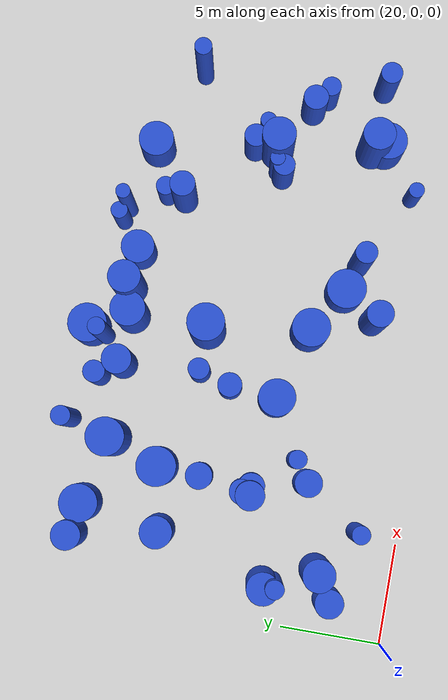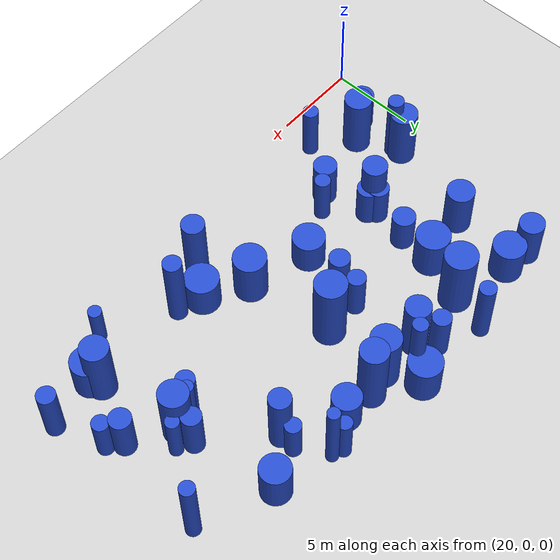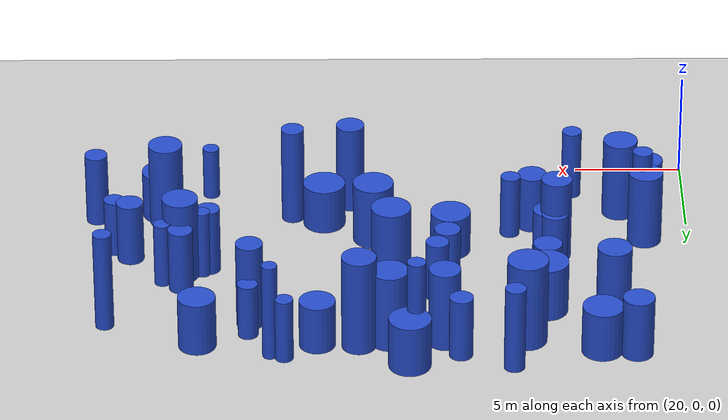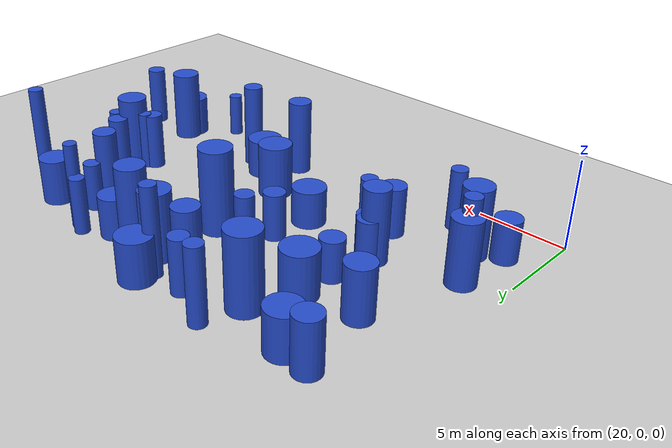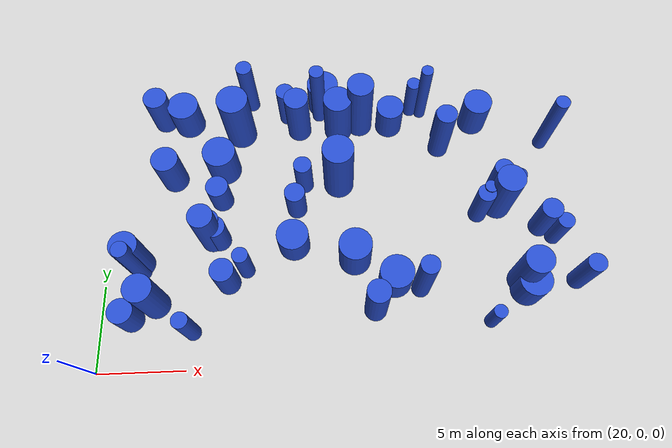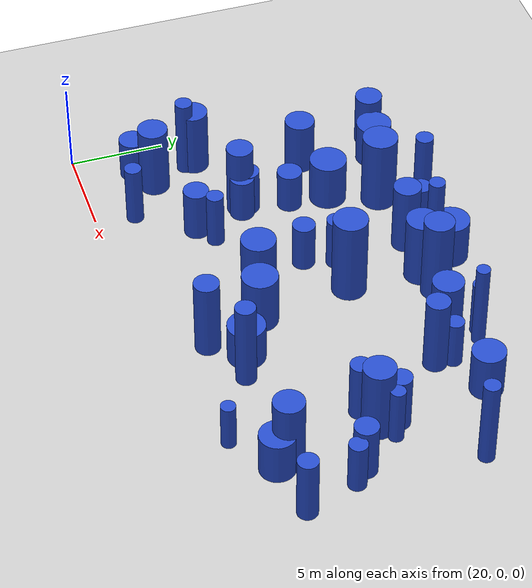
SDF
<sdf version="1.6">
 <world name="default">
  <model name="ground_plane">
   <static>1</static>
   <link name="link">
    <collision name="collision">
     <geometry><plane><normal>0 0 1</normal><size>100 100</size></plane></geometry>
     <surface><friction><ode><mu>100</mu><mu2>50</mu2></ode></friction></surface>
    </collision>
    <visual name="visual">
     <cast_shadows>0</cast_shadows>
     <geometry><plane><normal>0 0 1</normal><size>100 100</size></plane></geometry>
     <material>
      <script><uri>file://media/materials/scripts/gazebo.material</uri><name>Gazebo/Grey</name></script>
     </material>
    </visual>
   </link>
  </model>
  <model name="2">
   <static>0</static>
   <link name="link">
    <inertial>
     <mass>2</mass>
     <inertia><ixx>3.20586</ixx><ixy>0</ixy><ixz>0</ixz><iyy>3.20586</iyy><iyz>0</iyz><izz>0.636563</izz></inertia>
    </inertial>
    <collision name="collision">
     <geometry><cylinder><length>4.16238</length><radius>0.797849</radius></cylinder></geometry>
     <surface><contact><collide_without_contact>1</collide_without_contact></contact></surface>
    </collision>
    <visual name="visual">
     <geometry><cylinder><length>4.16238</length><radius>0.797849</radius></cylinder></geometry>
     <material>
      <script><uri>file://media/materials/scripts/gazebo.material</uri><name>Gazebo/Blue</name></script>
     </material>
    </visual>
    <gravity>0</gravity>
   </link>
   <pose>44.4662 4.48744 2.08119 0 -0 0</pose>
  </model>
  <model name="6">
   <static>0</static>
   <link name="link">
    <inertial>
     <mass>2</mass>
     <inertia><ixx>4.21567</ixx><ixy>0</ixy><ixz>0</ixz><iyy>4.21567</iyy><iyz>0</iyz><izz>0.18322</izz></inertia>
    </inertial>
    <collision name="collision">
     <geometry><cylinder><length>4.97437</length><radius>0.428042</radius></cylinder></geometry>
     <surface><contact><collide_without_contact>1</collide_without_contact></contact></surface>
    </collision>
    <visual name="visual">
     <geometry><cylinder><length>4.97437</length><radius>0.428042</radius></cylinder></geometry>
     <material>
      <script><uri>file://media/materials/scripts/gazebo.material</uri><name>Gazebo/Blue</name></script>
     </material>
    </visual>
    <gravity>0</gravity>
   </link>
   <pose>32.8393 16.173 2.48719 0 -0 0</pose>
  </model>
  <model name="8">
   <static>0</static>
   <link name="link">
    <inertial>
     <mass>2</mass>
     <inertia><ixx>3.88325</ixx><ixy>0</ixy><ixz>0</ixz><iyy>3.88325</iyy><iyz>0</iyz><izz>0.126882</izz></inertia>
    </inertial>
    <collision name="collision">
     <geometry><cylinder><length>4.78737</length><radius>0.356206</radius></cylinder></geometry>
     <surface><contact><collide_without_contact>1</collide_without_contact></contact></surface>
    </collision>
    <visual name="visual">
     <geometry><cylinder><length>4.78737</length><radius>0.356206</radius></cylinder></geometry>
     <material>
      <script><uri>file://media/materials/scripts/gazebo.material</uri><name>Gazebo/Blue</name></script>
     </material>
    </visual>
    <gravity>0</gravity>
   </link>
   <pose>39.4281 16.1246 2.39368 0 -0 0</pose>
  </model>
  <model name="10">
   <static>0</static>
   <link name="link">
    <inertial>
     <mass>2</mass>
     <inertia><ixx>3.24813</ixx><ixy>0</ixy><ixz>0</ixz><iyy>3.24813</iyy><iyz>0</iyz><izz>0.387761</izz></inertia>
    </inertial>
    <collision name="collision">
     <geometry><cylinder><length>4.28083</length><radius>0.622705</radius></cylinder></geometry>
     <surface><contact><collide_without_contact>1</collide_without_contact></contact></surface>
    </collision>
    <visual name="visual">
     <geometry><cylinder><length>4.28083</length><radius>0.622705</radius></cylinder></geometry>
     <material>
      <script><uri>file://media/materials/scripts/gazebo.material</uri><name>Gazebo/Blue</name></script>
     </material>
    </visual>
    <gravity>0</gravity>
   </link>
   <pose>40.3812 13.4456 2.14041 0 -0 0</pose>
  </model>
  <model name="16">
   <static>0</static>
   <link name="link">
    <inertial>
     <mass>2</mass>
     <inertia><ixx>1.16291</ixx><ixy>0</ixy><ixz>0</ixz><iyy>1.16291</iyy><iyz>0</iyz><izz>0.875446</izz></inertia>
    </inertial>
    <collision name="collision">
     <geometry><cylinder><length>2.08593</length><radius>0.935653</radius></cylinder></geometry>
     <surface><contact><collide_without_contact>1</collide_without_contact></contact></surface>
    </collision>
    <visual name="visual">
     <geometry><cylinder><length>2.08593</length><radius>0.935653</radius></cylinder></geometry>
     <material>
      <script><uri>file://media/materials/scripts/gazebo.material</uri><name>Gazebo/Blue</name></script>
     </material>
    </visual>
    <gravity>0</gravity>
   </link>
   <pose>31.1404 7.15658 1.04296 0 -0 0</pose>
  </model>
  <model name="23">
   <static>0</static>
   <link name="link">
    <inertial>
     <mass>2</mass>
     <inertia><ixx>2.07027</ixx><ixy>0</ixy><ixz>0</ixz><iyy>2.07027</iyy><iyz>0</iyz><izz>0.208934</izz></inertia>
    </inertial>
    <collision name="collision">
     <geometry><cylinder><length>3.43436</length><radius>0.457093</radius></cylinder></geometry>
     <surface><contact><collide_without_contact>1</collide_without_contact></contact></surface>
    </collision>
    <visual name="visual">
     <geometry><cylinder><length>3.43436</length><radius>0.457093</radius></cylinder></geometry>
     <material>
      <script><uri>file://media/materials/scripts/gazebo.material</uri><name>Gazebo/Blue</name></script>
     </material>
    </visual>
    <gravity>0</gravity>
   </link>
   <pose>25.3111 2.1227 1.71718 0 -0 0</pose>
  </model>
  <model name="26">
   <static>0</static>
   <link name="link">
    <inertial>
     <mass>2</mass>
     <inertia><ixx>1.56501</ixx><ixy>0</ixy><ixz>0</ixz><iyy>1.56501</iyy><iyz>0</iyz><izz>0.284058</izz></inertia>
    </inertial>
    <collision name="collision">
     <geometry><cylinder><length>2.92197</length><radius>0.532971</radius></cylinder></geometry>
     <surface><contact><collide_without_contact>1</collide_without_contact></contact></surface>
    </collision>
    <visual name="visual">
     <geometry><cylinder><length>2.92197</length><radius>0.532971</radius></cylinder></geometry>
     <material>
      <script><uri>file://media/materials/scripts/gazebo.material</uri><name>Gazebo/Blue</name></script>
     </material>
    </visual>
    <gravity>0</gravity>
   </link>
   <pose>31.8249 11.1624 1.46098 0 -0 0</pose>
  </model>
  <model name="28">
   <static>0</static>
   <link name="link">
    <inertial>
     <mass>2</mass>
     <inertia><ixx>2.79456</ixx><ixy>0</ixy><ixz>0</ixz><iyy>2.79456</iyy><iyz>0</iyz><izz>0.744168</izz></inertia>
    </inertial>
    <collision name="collision">
     <geometry><cylinder><length>3.81246</length><radius>0.862652</radius></cylinder></geometry>
     <surface><contact><collide_without_contact>1</collide_without_contact></contact></surface>
    </collision>
    <visual name="visual">
     <geometry><cylinder><length>3.81246</length><radius>0.862652</radius></cylinder></geometry>
     <material>
      <script><uri>file://media/materials/scripts/gazebo.material</uri><name>Gazebo/Blue</name></script>
     </material>
    </visual>
    <gravity>0</gravity>
   </link>
   <pose>34.0348 15.0048 1.90623 0 -0 0</pose>
  </model>
  <model name="30">
   <static>0</static>
   <link name="link">
    <inertial>
     <mass>2</mass>
     <inertia><ixx>2.2394</ixx><ixy>0</ixy><ixz>0</ixz><iyy>2.2394</iyy><iyz>0</iyz><izz>0.282543</izz></inertia>
    </inertial>
    <collision name="collision">
     <geometry><cylinder><length>3.54806</length><radius>0.531548</radius></cylinder></geometry>
     <surface><contact><collide_without_contact>1</collide_without_contact></contact></surface>
    </collision>
    <visual name="visual">
     <geometry><cylinder><length>3.54806</length><radius>0.531548</radius></cylinder></geometry>
     <material>
      <script><uri>file://media/materials/scripts/gazebo.material</uri><name>Gazebo/Blue</name></script>
     </material>
    </visual>
    <gravity>0</gravity>
   </link>
   <pose>47.7304 4.35367 1.77403 0 -0 0</pose>
  </model>
  <model name="36">
   <static>0</static>
   <link name="link">
    <inertial>
     <mass>2</mass>
     <inertia><ixx>4.09144</ixx><ixy>0</ixy><ixz>0</ixz><iyy>4.09144</iyy><iyz>0</iyz><izz>0.182254</izz></inertia>
    </inertial>
    <collision name="collision">
     <geometry><cylinder><length>4.89917</length><radius>0.426913</radius></cylinder></geometry>
     <surface><contact><collide_without_contact>1</collide_without_contact></contact></surface>
    </collision>
    <visual name="visual">
     <geometry><cylinder><length>4.89917</length><radius>0.426913</radius></cylinder></geometry>
     <material>
      <script><uri>file://media/materials/scripts/gazebo.material</uri><name>Gazebo/Blue</name></script>
     </material>
    </visual>
    <gravity>0</gravity>
   </link>
   <pose>47.0082 13.591 2.44958 0 -0 0</pose>
  </model>
  <model name="37">
   <static>0</static>
   <link name="link">
    <inertial>
     <mass>2</mass>
     <inertia><ixx>1.49639</ixx><ixy>0</ixy><ixz>0</ixz><iyy>1.49639</iyy><iyz>0</iyz><izz>0.93857</izz></inertia>
    </inertial>
    <collision name="collision">
     <geometry><cylinder><length>2.48246</length><radius>0.968798</radius></cylinder></geometry>
     <surface><contact><collide_without_contact>1</collide_without_contact></contact></surface>
    </collision>
    <visual name="visual">
     <geometry><cylinder><length>2.48246</length><radius>0.968798</radius></cylinder></geometry>
     <material>
      <script><uri>file://media/materials/scripts/gazebo.material</uri><name>Gazebo/Blue</name></script>
     </material>
    </visual>
    <gravity>0</gravity>
   </link>
   <pose>33.1347 16.9677 1.24123 0 -0 0</pose>
  </model>
  <model name="47">
   <static>0</static>
   <link name="link">
    <inertial>
     <mass>2</mass>
     <inertia><ixx>3.1155</ixx><ixy>0</ixy><ixz>0</ixz><iyy>3.1155</iyy><iyz>0</iyz><izz>0.511303</izz></inertia>
    </inertial>
    <collision name="collision">
     <geometry><cylinder><length>4.14235</length><radius>0.715055</radius></cylinder></geometry>
     <surface><contact><collide_without_contact>1</collide_without_contact></contact></surface>
    </collision>
    <visual name="visual">
     <geometry><cylinder><length>4.14235</length><radius>0.715055</radius></cylinder></geometry>
     <material>
      <script><uri>file://media/materials/scripts/gazebo.material</uri><name>Gazebo/Blue</name></script>
     </material>
    </visual>
    <gravity>0</gravity>
   </link>
   <pose>26.2492 7.67174 2.07118 0 -0 0</pose>
  </model>
  <model name="66">
   <static>0</static>
   <link name="link">
    <inertial>
     <mass>2</mass>
     <inertia><ixx>1.32349</ixx><ixy>0</ixy><ixz>0</ixz><iyy>1.32349</iyy><iyz>0</iyz><izz>0.364815</izz></inertia>
    </inertial>
    <collision name="collision">
     <geometry><cylinder><length>2.61658</length><radius>0.603999</radius></cylinder></geometry>
     <surface><contact><collide_without_contact>1</collide_without_contact></contact></surface>
    </collision>
    <visual name="visual">
     <geometry><cylinder><length>2.61658</length><radius>0.603999</radius></cylinder></geometry>
     <material>
      <script><uri>file://media/materials/scripts/gazebo.material</uri><name>Gazebo/Blue</name></script>
     </material>
    </visual>
    <gravity>0</gravity>
   </link>
   <pose>31.3296 9.54668 1.30829 0 -0 0</pose>
  </model>
  <model name="68">
   <static>0</static>
   <link name="link">
    <inertial>
     <mass>2</mass>
     <inertia><ixx>4.05064</ixx><ixy>0</ixy><ixz>0</ixz><iyy>4.05064</iyy><iyz>0</iyz><izz>0.285058</izz></inertia>
    </inertial>
    <collision name="collision">
     <geometry><cylinder><length>4.84238</length><radius>0.533908</radius></cylinder></geometry>
     <surface><contact><collide_without_contact>1</collide_without_contact></contact></surface>
    </collision>
    <visual name="visual">
     <geometry><cylinder><length>4.84238</length><radius>0.533908</radius></cylinder></geometry>
     <material>
      <script><uri>file://media/materials/scripts/gazebo.material</uri><name>Gazebo/Blue</name></script>
     </material>
    </visual>
    <gravity>0</gravity>
   </link>
   <pose>38.5073 4.20949 2.42119 0 -0 0</pose>
  </model>
  <model name="72">
   <static>0</static>
   <link name="link">
    <inertial>
     <mass>2</mass>
     <inertia><ixx>1.26226</ixx><ixy>0</ixy><ixz>0</ixz><iyy>1.26226</iyy><iyz>0</iyz><izz>0.691062</izz></inertia>
    </inertial>
    <collision name="collision">
     <geometry><cylinder><length>2.34529</length><radius>0.831302</radius></cylinder></geometry>
     <surface><contact><collide_without_contact>1</collide_without_contact></contact></surface>
    </collision>
    <visual name="visual">
     <geometry><cylinder><length>2.34529</length><radius>0.831302</radius></cylinder></geometry>
     <material>
      <script><uri>file://media/materials/scripts/gazebo.material</uri><name>Gazebo/Blue</name></script>
     </material>
    </visual>
    <gravity>0</gravity>
   </link>
   <pose>37.3059 15.2245 1.17264 0 -0 0</pose>
  </model>
  <model name="75">
   <static>0</static>
   <link name="link">
    <inertial>
     <mass>2</mass>
     <inertia><ixx>3.39002</ixx><ixy>0</ixy><ixz>0</ixz><iyy>3.39002</iyy><iyz>0</iyz><izz>0.436853</izz></inertia>
    </inertial>
    <collision name="collision">
     <geometry><cylinder><length>4.36229</length><radius>0.660948</radius></cylinder></geometry>
     <surface><contact><collide_without_contact>1</collide_without_contact></contact></surface>
    </collision>
    <visual name="visual">
     <geometry><cylinder><length>4.36229</length><radius>0.660948</radius></cylinder></geometry>
     <material>
      <script><uri>file://media/materials/scripts/gazebo.material</uri><name>Gazebo/Blue</name></script>
     </material>
    </visual>
    <gravity>0</gravity>
   </link>
   <pose>35.805 3.03949 2.18115 0 -0 0</pose>
  </model>
  <model name="77">
   <static>0</static>
   <link name="link">
    <inertial>
     <mass>2</mass>
     <inertia><ixx>3.04826</ixx><ixy>0</ixy><ixz>0</ixz><iyy>3.04826</iyy><iyz>0</iyz><izz>0.228469</izz></inertia>
    </inertial>
    <collision name="collision">
     <geometry><cylinder><length>4.19573</length><radius>0.477984</radius></cylinder></geometry>
     <surface><contact><collide_without_contact>1</collide_without_contact></contact></surface>
    </collision>
    <visual name="visual">
     <geometry><cylinder><length>4.19573</length><radius>0.477984</radius></cylinder></geometry>
     <material>
      <script><uri>file://media/materials/scripts/gazebo.material</uri><name>Gazebo/Blue</name></script>
     </material>
    </visual>
    <gravity>0</gravity>
   </link>
   <pose>28.4299 17.1628 2.09787 0 -0 0</pose>
  </model>
  <model name="78">
   <static>0</static>
   <link name="link">
    <inertial>
     <mass>2</mass>
     <inertia><ixx>4.04847</ixx><ixy>0</ixy><ixz>0</ixz><iyy>4.04847</iyy><iyz>0</iyz><izz>0.629911</izz></inertia>
    </inertial>
    <collision name="collision">
     <geometry><cylinder><length>4.73298</length><radius>0.793669</radius></cylinder></geometry>
     <surface><contact><collide_without_contact>1</collide_without_contact></contact></surface>
    </collision>
    <visual name="visual">
     <geometry><cylinder><length>4.73298</length><radius>0.793669</radius></cylinder></geometry>
     <material>
      <script><uri>file://media/materials/scripts/gazebo.material</uri><name>Gazebo/Blue</name></script>
     </material>
    </visual>
    <gravity>0</gravity>
   </link>
   <pose>35.4182 15.3407 2.36649 0 -0 0</pose>
  </model>
  <model name="90">
   <static>0</static>
   <link name="link">
    <inertial>
     <mass>2</mass>
     <inertia><ixx>2.81916</ixx><ixy>0</ixy><ixz>0</ixz><iyy>2.81916</iyy><iyz>0</iyz><izz>0.532219</izz></inertia>
    </inertial>
    <collision name="collision">
     <geometry><cylinder><length>3.91386</length><radius>0.729533</radius></cylinder></geometry>
     <surface><contact><collide_without_contact>1</collide_without_contact></contact></surface>
    </collision>
    <visual name="visual">
     <geometry><cylinder><length>3.91386</length><radius>0.729533</radius></cylinder></geometry>
     <material>
      <script><uri>file://media/materials/scripts/gazebo.material</uri><name>Gazebo/Blue</name></script>
     </material>
    </visual>
    <gravity>0</gravity>
   </link>
   <pose>31.5458 15.0812 1.95693 0 -0 0</pose>
  </model>
  <model name="93">
   <static>0</static>
   <link name="link">
    <inertial>
     <mass>2</mass>
     <inertia><ixx>2.55649</ixx><ixy>0</ixy><ixz>0</ixz><iyy>2.55649</iyy><iyz>0</iyz><izz>0.635989</izz></inertia>
    </inertial>
    <collision name="collision">
     <geometry><cylinder><length>3.66483</length><radius>0.797489</radius></cylinder></geometry>
     <surface><contact><collide_without_contact>1</collide_without_contact></contact></surface>
    </collision>
    <visual name="visual">
     <geometry><cylinder><length>3.66483</length><radius>0.797489</radius></cylinder></geometry>
     <material>
      <script><uri>file://media/materials/scripts/gazebo.material</uri><name>Gazebo/Blue</name></script>
     </material>
    </visual>
    <gravity>0</gravity>
   </link>
   <pose>22.0357 6.31783 1.83241 0 -0 0</pose>
  </model>
  <model name="96">
   <static>0</static>
   <link name="link">
    <inertial>
     <mass>2</mass>
     <inertia><ixx>1.17348</ixx><ixy>0</ixy><ixz>0</ixz><iyy>1.17348</iyy><iyz>0</iyz><izz>0.148193</izz></inertia>
    </inertial>
    <collision name="collision">
     <geometry><cylinder><length>2.56832</length><radius>0.384959</radius></cylinder></geometry>
     <surface><contact><collide_without_contact>1</collide_without_contact></contact></surface>
    </collision>
    <visual name="visual">
     <geometry><cylinder><length>2.56832</length><radius>0.384959</radius></cylinder></geometry>
     <material>
      <script><uri>file://media/materials/scripts/gazebo.material</uri><name>Gazebo/Blue</name></script>
     </material>
    </visual>
    <gravity>0</gravity>
   </link>
   <pose>42.4134 2.12337 1.28416 0 -0 0</pose>
  </model>
  <model name="104">
   <static>0</static>
   <link name="link">
    <inertial>
     <mass>2</mass>
     <inertia><ixx>1.39177</ixx><ixy>0</ixy><ixz>0</ixz><iyy>1.39177</iyy><iyz>0</iyz><izz>0.899716</izz></inertia>
    </inertial>
    <collision name="collision">
     <geometry><cylinder><length>2.37729</length><radius>0.948534</radius></cylinder></geometry>
     <surface><contact><collide_without_contact>1</collide_without_contact></contact></surface>
    </collision>
    <visual name="visual">
     <geometry><cylinder><length>2.37729</length><radius>0.948534</radius></cylinder></geometry>
     <material>
      <script><uri>file://media/materials/scripts/gazebo.material</uri><name>Gazebo/Blue</name></script>
     </material>
    </visual>
    <gravity>0</gravity>
   </link>
   <pose>24.4132 15.8053 1.18864 0 -0 0</pose>
  </model>
  <model name="107">
   <static>0</static>
   <link name="link">
    <inertial>
     <mass>2</mass>
     <inertia><ixx>1.72381</ixx><ixy>0</ixy><ixz>0</ixz><iyy>1.72381</iyy><iyz>0</iyz><izz>0.38773</izz></inertia>
    </inertial>
    <collision name="collision">
     <geometry><cylinder><length>3.0298</length><radius>0.62268</radius></cylinder></geometry>
     <surface><contact><collide_without_contact>1</collide_without_contact></contact></surface>
    </collision>
    <visual name="visual">
     <geometry><cylinder><length>3.0298</length><radius>0.62268</radius></cylinder></geometry>
     <material>
      <script><uri>file://media/materials/scripts/gazebo.material</uri><name>Gazebo/Blue</name></script>
     </material>
    </visual>
    <gravity>0</gravity>
   </link>
   <pose>46.0377 7.80321 1.5149 0 -0 0</pose>
  </model>
  <model name="109">
   <static>0</static>
   <link name="link">
    <inertial>
     <mass>2</mass>
     <inertia><ixx>1.81505</ixx><ixy>0</ixy><ixz>0</ixz><iyy>1.81505</iyy><iyz>0</iyz><izz>0.637128</izz></inertia>
    </inertial>
    <collision name="collision">
     <geometry><cylinder><length>2.99649</length><radius>0.798203</radius></cylinder></geometry>
     <surface><contact><collide_without_contact>1</collide_without_contact></contact></surface>
    </collision>
    <visual name="visual">
     <geometry><cylinder><length>2.99649</length><radius>0.798203</radius></cylinder></geometry>
     <material>
      <script><uri>file://media/materials/scripts/gazebo.material</uri><name>Gazebo/Blue</name></script>
     </material>
    </visual>
    <gravity>0</gravity>
   </link>
   <pose>23.7206 11.8082 1.49824 0 -0 0</pose>
  </model>
  <model name="111">
   <static>0</static>
   <link name="link">
    <inertial>
     <mass>2</mass>
     <inertia><ixx>1.74581</ixx><ixy>0</ixy><ixz>0</ixz><iyy>1.74581</iyy><iyz>0</iyz><izz>0.527772</izz></inertia>
    </inertial>
    <collision name="collision">
     <geometry><cylinder><length>2.98187</length><radius>0.726479</radius></cylinder></geometry>
     <surface><contact><collide_without_contact>1</collide_without_contact></contact></surface>
    </collision>
    <visual name="visual">
     <geometry><cylinder><length>2.98187</length><radius>0.726479</radius></cylinder></geometry>
     <material>
      <script><uri>file://media/materials/scripts/gazebo.material</uri><name>Gazebo/Blue</name></script>
     </material>
    </visual>
    <gravity>0</gravity>
   </link>
   <pose>22.8404 16.0415 1.49093 0 -0 0</pose>
  </model>
  <model name="113">
   <static>0</static>
   <link name="link">
    <inertial>
     <mass>2</mass>
     <inertia><ixx>1.79663</ixx><ixy>0</ixy><ixz>0</ixz><iyy>1.79663</iyy><iyz>0</iyz><izz>0.325162</izz></inertia>
    </inertial>
    <collision name="collision">
     <geometry><cylinder><length>3.13118</length><radius>0.57023</radius></cylinder></geometry>
     <surface><contact><collide_without_contact>1</collide_without_contact></contact></surface>
    </collision>
    <visual name="visual">
     <geometry><cylinder><length>3.13118</length><radius>0.57023</radius></cylinder></geometry>
     <material>
      <script><uri>file://media/materials/scripts/gazebo.material</uri><name>Gazebo/Blue</name></script>
     </material>
    </visual>
    <gravity>0</gravity>
   </link>
   <pose>43.6165 10.3969 1.56559 0 -0 0</pose>
  </model>
  <model name="116">
   <static>0</static>
   <link name="link">
    <inertial>
     <mass>2</mass>
     <inertia><ixx>1.63259</ixx><ixy>0</ixy><ixz>0</ixz><iyy>1.63259</iyy><iyz>0</iyz><izz>0.973707</izz></inertia>
    </inertial>
    <collision name="collision">
     <geometry><cylinder><length>2.62191</length><radius>0.986766</radius></cylinder></geometry>
     <surface><contact><collide_without_contact>1</collide_without_contact></contact></surface>
    </collision>
    <visual name="visual">
     <geometry><cylinder><length>2.62191</length><radius>0.986766</radius></cylinder></geometry>
     <material>
      <script><uri>file://media/materials/scripts/gazebo.material</uri><name>Gazebo/Blue</name></script>
     </material>
    </visual>
    <gravity>0</gravity>
   </link>
   <pose>26.8154 12.3832 1.31095 0 -0 0</pose>
  </model>
  <model name="120">
   <static>0</static>
   <link name="link">
    <inertial>
     <mass>2</mass>
     <inertia><ixx>1.23799</ixx><ixy>0</ixy><ixz>0</ixz><iyy>1.23799</iyy><iyz>0</iyz><izz>0.430058</izz></inertia>
    </inertial>
    <collision name="collision">
     <geometry><cylinder><length>2.47745</length><radius>0.655788</radius></cylinder></geometry>
     <surface><contact><collide_without_contact>1</collide_without_contact></contact></surface>
    </collision>
    <visual name="visual">
     <geometry><cylinder><length>2.47745</length><radius>0.655788</radius></cylinder></geometry>
     <material>
      <script><uri>file://media/materials/scripts/gazebo.material</uri><name>Gazebo/Blue</name></script>
     </material>
    </visual>
    <gravity>0</gravity>
   </link>
   <pose>26.6657 7.65278 1.23873 0 -0 0</pose>
  </model>
  <model name="123">
   <static>0</static>
   <link name="link">
    <inertial>
     <mass>2</mass>
     <inertia><ixx>1.70137</ixx><ixy>0</ixy><ixz>0</ixz><iyy>1.70137</iyy><iyz>0</iyz><izz>0.21026</izz></inertia>
    </inertial>
    <collision name="collision">
     <geometry><cylinder><length>3.09474</length><radius>0.458541</radius></cylinder></geometry>
     <surface><contact><collide_without_contact>1</collide_without_contact></contact></surface>
    </collision>
    <visual name="visual">
     <geometry><cylinder><length>3.09474</length><radius>0.458541</radius></cylinder></geometry>
     <material>
      <script><uri>file://media/materials/scripts/gazebo.material</uri><name>Gazebo/Blue</name></script>
     </material>
    </visual>
    <gravity>0</gravity>
   </link>
   <pose>28.322 5.685 1.54737 0 -0 0</pose>
  </model>
  <model name="124">
   <static>0</static>
   <link name="link">
    <inertial>
     <mass>2</mass>
     <inertia><ixx>1.4041</ixx><ixy>0</ixy><ixz>0</ixz><iyy>1.4041</iyy><iyz>0</iyz><izz>0.229798</izz></inertia>
    </inertial>
    <collision name="collision">
     <geometry><cylinder><length>2.78123</length><radius>0.479372</radius></cylinder></geometry>
     <surface><contact><collide_without_contact>1</collide_without_contact></contact></surface>
    </collision>
    <visual name="visual">
     <geometry><cylinder><length>2.78123</length><radius>0.479372</radius></cylinder></geometry>
     <material>
      <script><uri>file://media/materials/scripts/gazebo.material</uri><name>Gazebo/Blue</name></script>
     </material>
    </visual>
    <gravity>0</gravity>
   </link>
   <pose>46.7902 7.13736 1.39061 0 -0 0</pose>
  </model>
  <model name="142">
   <static>0</static>
   <link name="link">
    <inertial>
     <mass>2</mass>
     <inertia><ixx>1.48896</ixx><ixy>0</ixy><ixz>0</ixz><iyy>1.48896</iyy><iyz>0</iyz><izz>0.754625</izz></inertia>
    </inertial>
    <collision name="collision">
     <geometry><cylinder><length>2.58261</length><radius>0.868692</radius></cylinder></geometry>
     <surface><contact><collide_without_contact>1</collide_without_contact></contact></surface>
    </collision>
    <visual name="visual">
     <geometry><cylinder><length>2.58261</length><radius>0.868692</radius></cylinder></geometry>
     <material>
      <script><uri>file://media/materials/scripts/gazebo.material</uri><name>Gazebo/Blue</name></script>
     </material>
    </visual>
    <gravity>0</gravity>
   </link>
   <pose>42.7426 15.2603 1.29131 0 -0 0</pose>
  </model>
  <model name="149">
   <static>0</static>
   <link name="link">
    <inertial>
     <mass>2</mass>
     <inertia><ixx>3.19204</ixx><ixy>0</ixy><ixz>0</ixz><iyy>3.19204</iyy><iyz>0</iyz><izz>0.69083</izz></inertia>
    </inertial>
    <collision name="collision">
     <geometry><cylinder><length>4.13277</length><radius>0.831162</radius></cylinder></geometry>
     <surface><contact><collide_without_contact>1</collide_without_contact></contact></surface>
    </collision>
    <visual name="visual">
     <geometry><cylinder><length>4.13277</length><radius>0.831162</radius></cylinder></geometry>
     <material>
      <script><uri>file://media/materials/scripts/gazebo.material</uri><name>Gazebo/Blue</name></script>
     </material>
    </visual>
    <gravity>0</gravity>
   </link>
   <pose>43.6358 9.26999 2.06638 0 -0 0</pose>
  </model>
  <model name="151">
   <static>0</static>
   <link name="link">
    <inertial>
     <mass>2</mass>
     <inertia><ixx>1.73489</ixx><ixy>0</ixy><ixz>0</ixz><iyy>1.73489</iyy><iyz>0</iyz><izz>0.173939</izz></inertia>
    </inertial>
    <collision name="collision">
     <geometry><cylinder><length>3.14445</length><radius>0.41706</radius></cylinder></geometry>
     <surface><contact><collide_without_contact>1</collide_without_contact></contact></surface>
    </collision>
    <visual name="visual">
     <geometry><cylinder><length>3.14445</length><radius>0.41706</radius></cylinder></geometry>
     <material>
      <script><uri>file://media/materials/scripts/gazebo.material</uri><name>Gazebo/Blue</name></script>
     </material>
    </visual>
    <gravity>0</gravity>
   </link>
   <pose>38.7905 16.3474 1.57222 0 -0 0</pose>
  </model>
  <model name="157">
   <static>0</static>
   <link name="link">
    <inertial>
     <mass>2</mass>
     <inertia><ixx>1.33129</ixx><ixy>0</ixy><ixz>0</ixz><iyy>1.33129</iyy><iyz>0</iyz><izz>0.217097</izz></inertia>
    </inertial>
    <collision name="collision">
     <geometry><cylinder><length>2.70858</length><radius>0.465937</radius></cylinder></geometry>
     <surface><contact><collide_without_contact>1</collide_without_contact></contact></surface>
    </collision>
    <visual name="visual">
     <geometry><cylinder><length>2.70858</length><radius>0.465937</radius></cylinder></geometry>
     <material>
      <script><uri>file://media/materials/scripts/gazebo.material</uri><name>Gazebo/Blue</name></script>
     </material>
    </visual>
    <gravity>0</gravity>
   </link>
   <pose>40.456 14.377 1.35429 0 -0 0</pose>
  </model>
  <model name="161">
   <static>0</static>
   <link name="link">
    <inertial>
     <mass>2</mass>
     <inertia><ixx>1.94302</ixx><ixy>0</ixy><ixz>0</ixz><iyy>1.94302</iyy><iyz>0</iyz><izz>0.289682</izz></inertia>
    </inertial>
    <collision name="collision">
     <geometry><cylinder><length>3.28467</length><radius>0.538221</radius></cylinder></geometry>
     <surface><contact><collide_without_contact>1</collide_without_contact></contact></surface>
    </collision>
    <visual name="visual">
     <geometry><cylinder><length>3.28467</length><radius>0.538221</radius></cylinder></geometry>
     <material>
      <script><uri>file://media/materials/scripts/gazebo.material</uri><name>Gazebo/Blue</name></script>
     </material>
    </visual>
    <gravity>0</gravity>
   </link>
   <pose>42.3718 8.77913 1.64233 0 -0 0</pose>
  </model>
  <model name="162">
   <static>0</static>
   <link name="link">
    <inertial>
     <mass>2</mass>
     <inertia><ixx>1.94466</ixx><ixy>0</ixy><ixz>0</ixz><iyy>1.94466</iyy><iyz>0</iyz><izz>0.138357</izz></inertia>
    </inertial>
    <collision name="collision">
     <geometry><cylinder><length>3.35453</length><radius>0.371964</radius></cylinder></geometry>
     <surface><contact><collide_without_contact>1</collide_without_contact></contact></surface>
    </collision>
    <visual name="visual">
     <geometry><cylinder><length>3.35453</length><radius>0.371964</radius></cylinder></geometry>
     <material>
      <script><uri>file://media/materials/scripts/gazebo.material</uri><name>Gazebo/Blue</name></script>
     </material>
    </visual>
    <gravity>0</gravity>
   </link>
   <pose>42.6403 9.15377 1.67727 0 -0 0</pose>
  </model>
  <model name="166">
   <static>0</static>
   <link name="link">
    <inertial>
     <mass>2</mass>
     <inertia><ixx>1.54037</ixx><ixy>0</ixy><ixz>0</ixz><iyy>1.54037</iyy><iyz>0</iyz><izz>0.465652</izz></inertia>
    </inertial>
    <collision name="collision">
     <geometry><cylinder><length>2.80094</length><radius>0.682387</radius></cylinder></geometry>
     <surface><contact><collide_without_contact>1</collide_without_contact></contact></surface>
    </collision>
    <visual name="visual">
     <geometry><cylinder><length>2.80094</length><radius>0.682387</radius></cylinder></geometry>
     <material>
      <script><uri>file://media/materials/scripts/gazebo.material</uri><name>Gazebo/Blue</name></script>
     </material>
    </visual>
    <gravity>0</gravity>
   </link>
   <pose>27.2829 4.96384 1.40047 0 -0 0</pose>
  </model>
  <model name="169">
   <static>0</static>
   <link name="link">
    <inertial>
     <mass>2</mass>
     <inertia><ixx>1.07216</ixx><ixy>0</ixy><ixz>0</ixz><iyy>1.07216</iyy><iyz>0</iyz><izz>0.445485</izz></inertia>
    </inertial>
    <collision name="collision">
     <geometry><cylinder><length>2.25755</length><radius>0.667447</radius></cylinder></geometry>
     <surface><contact><collide_without_contact>1</collide_without_contact></contact></surface>
    </collision>
    <visual name="visual">
     <geometry><cylinder><length>2.25755</length><radius>0.667447</radius></cylinder></geometry>
     <material>
      <script><uri>file://media/materials/scripts/gazebo.material</uri><name>Gazebo/Blue</name></script>
     </material>
    </visual>
    <gravity>0</gravity>
   </link>
   <pose>26.7186 10.2668 1.12877 0 -0 0</pose>
  </model>
  <model name="171">
   <static>0</static>
   <link name="link">
    <inertial>
     <mass>2</mass>
     <inertia><ixx>1.15098</ixx><ixy>0</ixy><ixz>0</ixz><iyy>1.15098</iyy><iyz>0</iyz><izz>0.170705</izz></inertia>
    </inertial>
    <collision name="collision">
     <geometry><cylinder><length>2.52859</length><radius>0.413164</radius></cylinder></geometry>
     <surface><contact><collide_without_contact>1</collide_without_contact></contact></surface>
    </collision>
    <visual name="visual">
     <geometry><cylinder><length>2.52859</length><radius>0.413164</radius></cylinder></geometry>
     <material>
      <script><uri>file://media/materials/scripts/gazebo.material</uri><name>Gazebo/Blue</name></script>
     </material>
    </visual>
    <gravity>0</gravity>
   </link>
   <pose>24.0099 11.86 1.2643 0 -0 0</pose>
  </model>
  <model name="173">
   <static>0</static>
   <link name="link">
    <inertial>
     <mass>2</mass>
     <inertia><ixx>1.72707</ixx><ixy>0</ixy><ixz>0</ixz><iyy>1.72707</iyy><iyz>0</iyz><izz>0.295465</izz></inertia>
    </inertial>
    <collision name="collision">
     <geometry><cylinder><length>3.07832</length><radius>0.543567</radius></cylinder></geometry>
     <surface><contact><collide_without_contact>1</collide_without_contact></contact></surface>
    </collision>
    <visual name="visual">
     <geometry><cylinder><length>3.07832</length><radius>0.543567</radius></cylinder></geometry>
     <material>
      <script><uri>file://media/materials/scripts/gazebo.material</uri><name>Gazebo/Blue</name></script>
     </material>
    </visual>
    <gravity>0</gravity>
   </link>
   <pose>30.8153 16.1381 1.53916 0 -0 0</pose>
  </model>
  <model name="182">
   <static>0</static>
   <link name="link">
    <inertial>
     <mass>2</mass>
     <inertia><ixx>1.26185</ixx><ixy>0</ixy><ixz>0</ixz><iyy>1.26185</iyy><iyz>0</iyz><izz>0.388588</izz></inertia>
    </inertial>
    <collision name="collision">
     <geometry><cylinder><length>2.53087</length><radius>0.623369</radius></cylinder></geometry>
     <surface><contact><collide_without_contact>1</collide_without_contact></contact></surface>
    </collision>
    <visual name="visual">
     <geometry><cylinder><length>2.53087</length><radius>0.623369</radius></cylinder></geometry>
     <material>
      <script><uri>file://media/materials/scripts/gazebo.material</uri><name>Gazebo/Blue</name></script>
     </material>
    </visual>
    <gravity>0</gravity>
   </link>
   <pose>26.319 8.06985 1.26544 0 -0 0</pose>
  </model>
  <model name="184">
   <static>0</static>
   <link name="link">
    <inertial>
     <mass>2</mass>
     <inertia><ixx>3.46192</ixx><ixy>0</ixy><ixz>0</ixz><iyy>3.46192</iyy><iyz>0</iyz><izz>0.212884</izz></inertia>
    </inertial>
    <collision name="collision">
     <geometry><cylinder><length>4.48696</length><radius>0.461393</radius></cylinder></geometry>
     <surface><contact><collide_without_contact>1</collide_without_contact></contact></surface>
    </collision>
    <visual name="visual">
     <geometry><cylinder><length>4.48696</length><radius>0.461393</radius></cylinder></geometry>
     <material>
      <script><uri>file://media/materials/scripts/gazebo.material</uri><name>Gazebo/Blue</name></script>
     </material>
    </visual>
    <gravity>0</gravity>
   </link>
   <pose>22.1808 5.79471 2.24348 0 -0 0</pose>
  </model>
  <model name="197">
   <static>0</static>
   <link name="link">
    <inertial>
     <mass>2</mass>
     <inertia><ixx>4.20898</ixx><ixy>0</ixy><ixz>0</ixz><iyy>4.20898</iyy><iyz>0</iyz><izz>0.835806</izz></inertia>
    </inertial>
    <collision name="collision">
     <geometry><cylinder><length>4.76933</length><radius>0.914225</radius></cylinder></geometry>
     <surface><contact><collide_without_contact>1</collide_without_contact></contact></surface>
    </collision>
    <visual name="visual">
     <geometry><cylinder><length>4.76933</length><radius>0.914225</radius></cylinder></geometry>
     <material>
      <script><uri>file://media/materials/scripts/gazebo.material</uri><name>Gazebo/Blue</name></script>
     </material>
    </visual>
    <gravity>0</gravity>
   </link>
   <pose>33.9429 11.1444 2.38466 0 -0 0</pose>
  </model>
  <model name="213">
   <static>0</static>
   <link name="link">
    <inertial>
     <mass>2</mass>
     <inertia><ixx>2.90427</ixx><ixy>0</ixy><ixz>0</ixz><iyy>2.90427</iyy><iyz>0</iyz><izz>0.642035</izz></inertia>
    </inertial>
    <collision name="collision">
     <geometry><cylinder><length>3.93695</length><radius>0.801271</radius></cylinder></geometry>
     <surface><contact><collide_without_contact>1</collide_without_contact></contact></surface>
    </collision>
    <visual name="visual">
     <geometry><cylinder><length>3.93695</length><radius>0.801271</radius></cylinder></geometry>
     <material>
      <script><uri>file://media/materials/scripts/gazebo.material</uri><name>Gazebo/Blue</name></script>
     </material>
    </visual>
    <gravity>0</gravity>
   </link>
   <pose>23.1116 3.80859 1.96847 0 -0 0</pose>
  </model>
  <model name="227">
   <static>0</static>
   <link name="link">
    <inertial>
     <mass>2</mass>
     <inertia><ixx>1.99138</ixx><ixy>0</ixy><ixz>0</ixz><iyy>1.99138</iyy><iyz>0</iyz><izz>0.902119</izz></inertia>
    </inertial>
    <collision name="collision">
     <geometry><cylinder><length>3.04005</length><radius>0.949799</radius></cylinder></geometry>
     <surface><contact><collide_without_contact>1</collide_without_contact></contact></surface>
    </collision>
    <visual name="visual">
     <geometry><cylinder><length>3.04005</length><radius>0.949799</radius></cylinder></geometry>
     <material>
      <script><uri>file://media/materials/scripts/gazebo.material</uri><name>Gazebo/Blue</name></script>
     </material>
    </visual>
    <gravity>0</gravity>
   </link>
   <pose>34.735 6.1163 1.52003 0 -0 0</pose>
  </model>
  <model name="229">
   <static>0</static>
   <link name="link">
    <inertial>
     <mass>2</mass>
     <inertia><ixx>1.75079</ixx><ixy>0</ixy><ixz>0</ixz><iyy>1.75079</iyy><iyz>0</iyz><izz>0.155097</izz></inertia>
    </inertial>
    <collision name="collision">
     <geometry><cylinder><length>3.16851</length><radius>0.393824</radius></cylinder></geometry>
     <surface><contact><collide_without_contact>1</collide_without_contact></contact></surface>
    </collision>
    <visual name="visual">
     <geometry><cylinder><length>3.16851</length><radius>0.393824</radius></cylinder></geometry>
     <material>
      <script><uri>file://media/materials/scripts/gazebo.material</uri><name>Gazebo/Blue</name></script>
     </material>
    </visual>
    <gravity>0</gravity>
   </link>
   <pose>44.4702 9.92476 1.58426 0 -0 0</pose>
  </model>
  <model name="235">
   <static>0</static>
   <link name="link">
    <inertial>
     <mass>2</mass>
     <inertia><ixx>1.18672</ixx><ixy>0</ixy><ixz>0</ixz><iyy>1.18672</iyy><iyz>0</iyz><izz>0.509115</izz></inertia>
    </inertial>
    <collision name="collision">
     <geometry><cylinder><length>2.36495</length><radius>0.713523</radius></cylinder></geometry>
     <surface><contact><collide_without_contact>1</collide_without_contact></contact></surface>
    </collision>
    <visual name="visual">
     <geometry><cylinder><length>2.36495</length><radius>0.713523</radius></cylinder></geometry>
     <material>
      <script><uri>file://media/materials/scripts/gazebo.material</uri><name>Gazebo/Blue</name></script>
     </material>
    </visual>
    <gravity>0</gravity>
   </link>
   <pose>21.7555 2.99197 1.18247 0 -0 0</pose>
  </model>
  <model name="238">
   <static>0</static>
   <link name="link">
    <inertial>
     <mass>2</mass>
     <inertia><ixx>1.28037</ixx><ixy>0</ixy><ixz>0</ixz><iyy>1.28037</iyy><iyz>0</iyz><izz>0.973419</izz></inertia>
    </inertial>
    <collision name="collision">
     <geometry><cylinder><length>2.18219</length><radius>0.98662</radius></cylinder></geometry>
     <surface><contact><collide_without_contact>1</collide_without_contact></contact></surface>
    </collision>
    <visual name="visual">
     <geometry><cylinder><length>2.18219</length><radius>0.98662</radius></cylinder></geometry>
     <material>
      <script><uri>file://media/materials/scripts/gazebo.material</uri><name>Gazebo/Blue</name></script>
     </material>
    </visual>
    <gravity>0</gravity>
   </link>
   <pose>37.0316 4.69177 1.09109 0 -0 0</pose>
  </model>
  <model name="246">
   <static>0</static>
   <link name="link">
    <inertial>
     <mass>2</mass>
     <inertia><ixx>1.35548</ixx><ixy>0</ixy><ixz>0</ixz><iyy>1.35548</iyy><iyz>0</iyz><izz>0.859848</izz></inertia>
    </inertial>
    <collision name="collision">
     <geometry><cylinder><length>2.35655</length><radius>0.92728</radius></cylinder></geometry>
     <surface><contact><collide_without_contact>1</collide_without_contact></contact></surface>
    </collision>
    <visual name="visual">
     <geometry><cylinder><length>2.35655</length><radius>0.92728</radius></cylinder></geometry>
     <material>
      <script><uri>file://media/materials/scripts/gazebo.material</uri><name>Gazebo/Blue</name></script>
     </material>
    </visual>
    <gravity>0</gravity>
   </link>
   <pose>44.6874 3.85991 1.17828 0 -0 0</pose>
  </model>
  <model name="249">
   <static>0</static>
   <link name="link">
    <inertial>
     <mass>2</mass>
     <inertia><ixx>3.49119</ixx><ixy>0</ixy><ixz>0</ixz><iyy>3.49119</iyy><iyz>0</iyz><izz>0.872611</izz></inertia>
    </inertial>
    <collision name="collision">
     <geometry><cylinder><length>4.28127</length><radius>0.934137</radius></cylinder></geometry>
     <surface><contact><collide_without_contact>1</collide_without_contact></contact></surface>
    </collision>
    <visual name="visual">
     <geometry><cylinder><length>4.28127</length><radius>0.934137</radius></cylinder></geometry>
     <material>
      <script><uri>file://media/materials/scripts/gazebo.material</uri><name>Gazebo/Blue</name></script>
     </material>
    </visual>
    <gravity>0</gravity>
   </link>
   <pose>27.8081 14.9129 2.14064 0 -0 0</pose>
  </model>
 </world>
</sdf>
